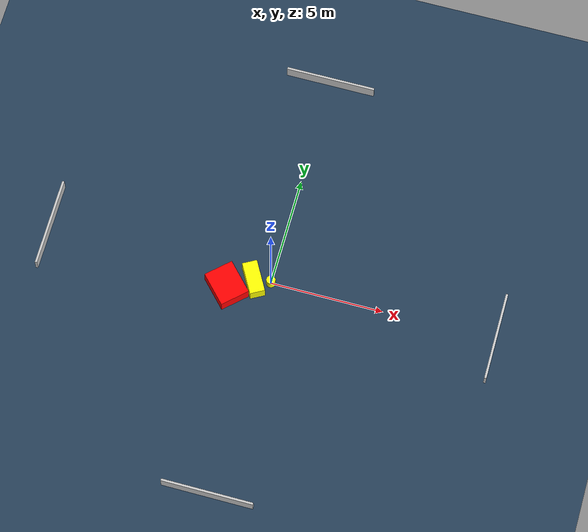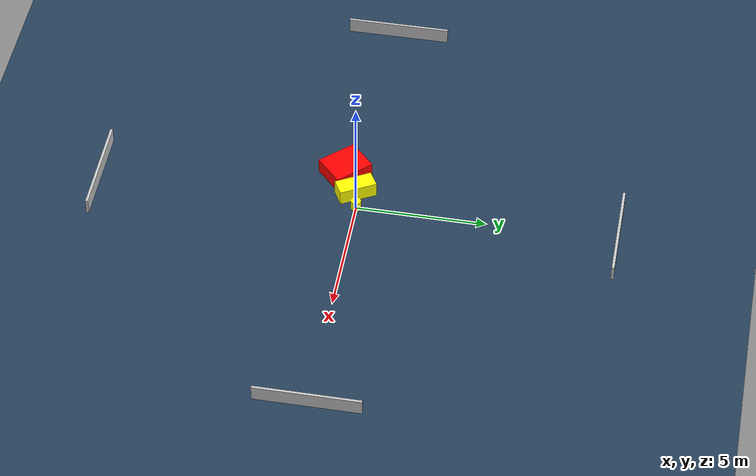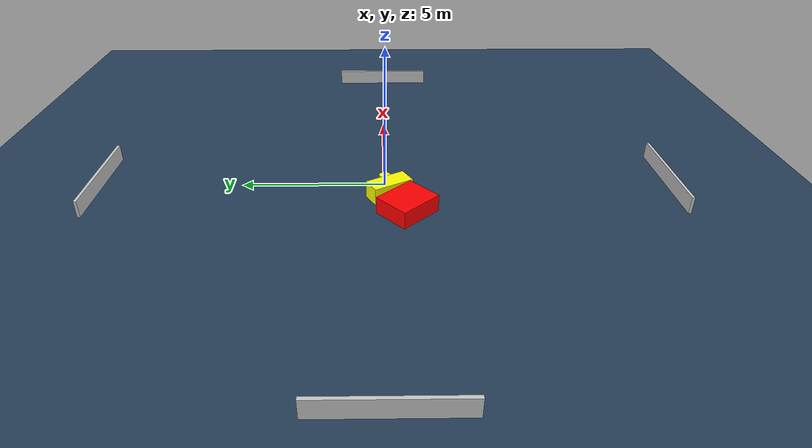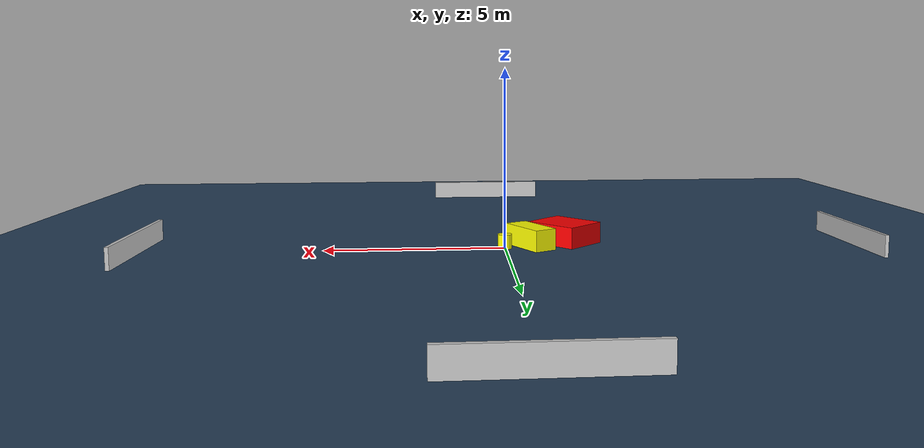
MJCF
<?xml version="1.0" ?>
<mujoco model="generated_environment">
  <option timestep="0.01" integrator="RK4" cone="elliptic"/>
  <default>
    <geom density="1"/>
  </default>
  <asset>
    <texture builtin="gradient" height="3072" name="skybox" rgb1="0.3 0.5 0.7" rgb2="0 0 0" type="skybox" width="512"/>
    <texture builtin="checker" height="300" name="groundplane" rgb1="0.2 0.3 0.4" rgb2="0.1 0.2 0.3" type="2d" width="300"/>
    <material name="groundplane" reflectance="0.2" texrepeat="5 5" texture="groundplane"/>
  </asset>
  <worldbody>
    <light dir="0 0 -1" directional="true" pos="0 0 1.5"/>
    <geom condim="3" friction="0.5 0.005 0.001" material="groundplane" name="floor" pos="0 0 0" size="0 0 0.05" type="plane"/>
    <body name="walls">
      <geom name="wall_1" condim="4" pos="-10.0 0.0 0.3" rgba="0.800000011920929 0.800000011920929 0.800000011920929 1.0" size="0.05 2.0 0.3" type="box"/>
      <geom name="wall_2" condim="4" pos="10.0 0.0 0.3" rgba="0.800000011920929 0.800000011920929 0.800000011920929 1.0" size="0.05 2.0 0.3" type="box"/>
      <geom name="wall_3" condim="4" pos="0.0 -10.0 0.3" rgba="0.800000011920929 0.800000011920929 0.800000011920929 1.0" size="2.0 0.05 0.3" type="box"/>
      <geom name="wall_4" condim="4" pos="0.0 10.0 0.3" rgba="0.800000011920929 0.800000011920929 0.800000011920929 1.0" size="2.0 0.05 0.3" type="box"/>
    </body>
    <body name="robot">
      <joint name="joint_x" type="slide" pos="0 0 0" axis="1 0 0"/>
      <joint name="joint_y" type="slide" pos="0 0 0" axis="0 1 0"/>
      <geom name="robot" type="cylinder" pos="0.0 0.0 0.2" size="0.2 0.2 0.0" mass="5.0" friction="1.0 0.005 0.0001" condim="4" rgba="1.0 1.0 0.0 1.0"/>
    </body>
    <body name="obstacle_1_movable">
      <geom name="obstacle_1_movable" condim="4" pos="-0.7424768518071797 -0.14129854073829892 0.3" euler="0 0 29.18172794656719" friction="0.0 0.005 0.001" rgba="1.0 1.0 0.0 1.0" size="0.3331937195241315 0.7298092568230077 0.3" type="box" mass="0.1"/>
      <joint type="free"/>
    </body>
    <body name="obstacle_2_static">
      <geom name="obstacle_2_static" condim="4" pos="-1.7849900765476758 -0.718288027425142 0.3" euler="0 0 43.05127821413567" friction="0.0 0.005 0.001" rgba="1.0 0.0 0.0 1.0" size="0.6625364532583924 0.7959122707818396 0.3" type="box"/>
    </body>
  </worldbody>
  <actuator>
    <motor name="actuator_x" joint="joint_x" gear="1" ctrlrange="-1 1"/>
    <motor name="actuator_y" joint="joint_y" gear="1" ctrlrange="-1 1"/>
  </actuator>
</mujoco>
